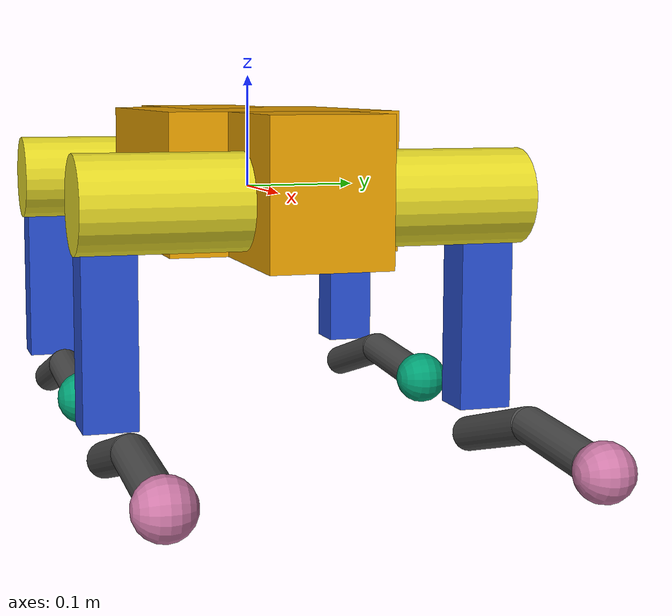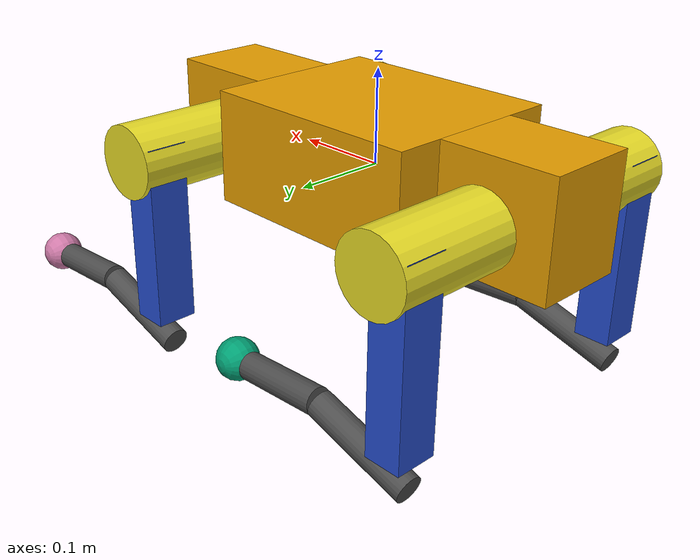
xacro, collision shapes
<?xml version="1.0"?>
<robot name="dog" xmlns:xacro="http://www.ros.org/wiki/xacro">

    <xacro:include filename="./const.xacro"/>
    <xacro:include filename="./ros2_control.xacro"/>
    <xacro:include filename="./leg.xacro"/>

    <link name="TORSO">
        <inertial>
            <origin xyz="${torso_com_x} ${torso_com_y} ${torso_com_z}"/>
            <mass value="${torso_mass}"/>
            <inertia ixx="${torso_ixx}" ixy="0" ixz="0" iyy="${torso_iyy}" iyz="0" izz="${torso_izz}"/>
        </inertial>
        <visual>
            <geometry>
                <mesh filename="${mesh_path}/torso.STL"/>
            </geometry>
        </visual>
        <collision>
            <origin xyz="0 0 0.01"/>
            <geometry>
                <box size="0.5 0.1 0.12"/>
            </geometry>
        </collision>
        <collision>
            <origin xyz="0 0 0.01"/>
            <geometry>
                <box size="0.25 0.2 0.12"/>
            </geometry>
        </collision>
    </link>

    <link name="imu_link">
        <inertial>
            <mass value="0.1"/>
            <origin xyz="0 0 0" rpy="0 0 0"/>
            <inertia ixx="0.001" ixy="0.0" ixz="0.0" iyy="0.001" iyz="0.0" izz="0.001"/>
        </inertial>
    </link>

    <joint name="imu_joint" type="fixed">
        <parent link="TORSO"/>
        <child link="imu_link"/>
        <origin xyz="0 0 0" rpy="0 0 0"/>
    </joint>
    <gazebo reference="imu_joint">
            <preserveFixedJoint>true</preserveFixedJoint>
    </gazebo>

    <link name="base_link"/>
    <joint name="base_joint" type="fixed">
        <parent link="base_link"/>
        <child link="TORSO"/>
        <origin xyz="0 0 0" rpy="0 0 0"/>
    </joint>

    <xacro:dog_leg name="LF" mirror="1" f_b="1"/>
    <xacro:dog_leg name="LH" mirror="1" f_b="-1"/>
    <xacro:dog_leg name="RF" mirror="-1" f_b="1"/>
    <xacro:dog_leg name="RH" mirror="-1" f_b="-1"/>

    <ros2_control name="dog_System" type="system">
        <hardware>
            <plugin>dog_hardware/DogGazeboHW</plugin>
            <param name="delay">${cfg['controller_manager']['ros__parameters']['hw_params']['delay']}</param>
            <param name="imu_accel_var">${cfg['controller_manager']['ros__parameters']['imu_params']['accel']['variance']}</param>
            <param name="imu_gyro_var">${cfg['controller_manager']['ros__parameters']['imu_params']['gyro']['variance']}</param>
            <param name="imu_ori_var">${cfg['controller_manager']['ros__parameters']['imu_params']['orientation']['variance']}</param>
        </hardware>

        <sensor name="imu_sensor">
            <state_interface name="orientation.x"/>
            <state_interface name="orientation.y"/>
            <state_interface name="orientation.z"/>
            <state_interface name="orientation.w"/>
            <state_interface name="angular_velocity.x"/>
            <state_interface name="angular_velocity.y"/>
            <state_interface name="angular_velocity.z"/>
            <state_interface name="linear_acceleration.x"/>
            <state_interface name="linear_acceleration.y"/>
            <state_interface name="linear_acceleration.z"/>

            <state_interface name="orientation_covariance"/>
            <state_interface name="angular_velocity_covariance"/>
            <state_interface name="linear_acceleration_covariance"/>
        </sensor>

        <sensor name="LF_contact_sensor"> <state_interface name="contact"/></sensor>
        <sensor name="RF_contact_sensor"> <state_interface name="contact"/></sensor>
        <sensor name="LH_contact_sensor"> <state_interface name="contact"/></sensor>
        <sensor name="RH_contact_sensor"> <state_interface name="contact"/></sensor>

        <xacro:leg_control_interface name="LF"/>
        <xacro:leg_control_interface name="RF"/>
        <xacro:leg_control_interface name="LH"/>
        <xacro:leg_control_interface name="RH"/>
    </ros2_control>

    <gazebo reference="imu_link">
      <sensor name="imu_sensor" type="imu">
        <always_on>true</always_on>
        <update_rate>1000</update_rate>
        <imu>
          <orientation>
            <x><noise type="gaussian"><stddev>${cfg['controller_manager']['ros__parameters']['imu_params']['orientation']['variance']**0.5}</stddev></noise></x>
            <y><noise type="gaussian"><stddev>${cfg['controller_manager']['ros__parameters']['imu_params']['orientation']['variance']**0.5}</stddev></noise></y>
            <z><noise type="gaussian"><stddev>${cfg['controller_manager']['ros__parameters']['imu_params']['orientation']['variance']**0.5}</stddev></noise></z>
          </orientation>
          <linear_acceleration>
            <x><noise type="gaussian"><stddev>${cfg['controller_manager']['ros__parameters']['imu_params']['accel']['variance']**0.5}</stddev><bias_mean>${cfg['controller_manager']['ros__parameters']['imu_params']['accel']['bias_mean']}</bias_mean></noise></x>
            <y><noise type="gaussian"><stddev>${cfg['controller_manager']['ros__parameters']['imu_params']['accel']['variance']**0.5}</stddev><bias_mean>${cfg['controller_manager']['ros__parameters']['imu_params']['accel']['bias_mean']}</bias_mean></noise></y>
            <z><noise type="gaussian"><stddev>${cfg['controller_manager']['ros__parameters']['imu_params']['accel']['variance']**0.5}</stddev><bias_mean>${cfg['controller_manager']['ros__parameters']['imu_params']['accel']['bias_mean']}</bias_mean></noise></z>
          </linear_acceleration>
          <angular_velocity>
            <x><noise type="gaussian"><stddev>${cfg['controller_manager']['ros__parameters']['imu_params']['gyro']['variance']**0.5}</stddev><bias_mean>${cfg['controller_manager']['ros__parameters']['imu_params']['gyro']['bias_mean']}</bias_mean></noise></x>
            <y><noise type="gaussian"><stddev>${cfg['controller_manager']['ros__parameters']['imu_params']['gyro']['variance']**0.5}</stddev><bias_mean>${cfg['controller_manager']['ros__parameters']['imu_params']['gyro']['bias_mean']}</bias_mean></noise></y>
            <z><noise type="gaussian"><stddev>${cfg['controller_manager']['ros__parameters']['imu_params']['gyro']['variance']**0.5}</stddev><bias_mean>${cfg['controller_manager']['ros__parameters']['imu_params']['gyro']['bias_mean']}</bias_mean></noise></z>
          </angular_velocity>
        </imu>
      </sensor>
    </gazebo>

    <gazebo>
        <plugin filename="libgazebo_ros2_control.so" name="gazebo_ros2_control">
            <parameters>$(find dog_bringup)/config/lite3/robot_controllers.yaml</parameters>
            <robot_param>robot_description</robot_param>
            <robot_param_node>robot_state_publisher</robot_param_node>
        </plugin>
    </gazebo>
    <gazebo>
      <plugin name="dog_ground_truth" filename="libgazebo_ros_p3d.so">
        <ros>
          <remapping>odom:=/ground_truth</remapping>
        </ros>
        <body_name>base_link</body_name>
        <frame_name>world</frame_name>
        <update_rate>10.0</update_rate>
        <xyz_offset>0 0 0</xyz_offset>
        <rpy_offset>0 0 0</rpy_offset>
        <gaussian_noise>0.001</gaussian_noise>
      </plugin>
    </gazebo>
</robot>

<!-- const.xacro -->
<robot xmlns:xacro="http://www.ros.org/wiki/xacro">
    <!-- xacro ./dog.xacro > dog.urdf -->
    <xacro:property name="mesh_path" value="package://dog_bringup/meshes/lite3"/>
    <xacro:property name="cfg" value="${xacro.load_yaml('$(find dog_bringup)/config/lite3/robot_controllers.yaml')}"/>

<!-- 躯干参数 -->
<xacro:property name="torso_mass" value="5.6056"/>        <!-- 躯干质量(kg) -->
<xacro:property name="torso_com_x" value="0"/>            <!-- 躯干质心x轴坐标(m) -->
<xacro:property name="torso_com_y" value="0"/>            <!-- 躯干质心y轴坐标(m) -->
<xacro:property name="torso_com_z" value="0"/>            <!-- 躯干质心z轴坐标(m) -->
<xacro:property name="torso_ixx" value="0.02456"/>        <!-- 躯干绕x轴转动惯量(kg·m²) -->
<xacro:property name="torso_iyy" value="0.05518"/>        <!-- 躯干绕y轴转动惯量(kg·m²) -->
<xacro:property name="torso_izz" value="0.07016"/>        <!-- 躯干绕z轴转动惯量(kg·m²) -->

<xacro:property name="damping" value="0.05"/>             <!-- 阻尼系数 -->
<xacro:property name="friction" value="0.01"/>            <!-- 摩擦系数 -->
<!-- 髋关节参数 -->
<xacro:property name="hip_mass" value="0.550"/>           <!-- 髋关节质量(kg) -->
<xacro:property name="hip_com_x" value="-0.00601"/>       <!-- 髋关节质心x轴坐标(m) -->
<xacro:property name="hip_com_y" value="-0.0066532"/>     <!-- 髋关节质心y轴坐标(m) -->
<xacro:property name="hip_com_z" value="0.00034295"/>     <!-- 髋关节质心z轴坐标(m) -->
<xacro:property name="hip_ixx" value="0.0003949"/>        <!-- 髋关节绕x轴转动惯量(kg·m²) -->
<xacro:property name="hip_iyy" value="0.0004028"/>        <!-- 髋关节绕y轴转动惯量(kg·m²) -->
<xacro:property name="hip_izz" value="0.0004472"/>        <!-- 髋关节绕z轴转动惯量(kg·m²) -->

<!-- 大腿参数 -->
<xacro:property name="thigh_mass" value="0.86"/>          <!-- 大腿质量(kg) -->
<xacro:property name="thigh_com_x" value="-0.0039245"/>   <!-- 大腿质心x轴坐标(m) -->
<xacro:property name="thigh_com_y" value="-0.014632"/>    <!-- 大腿质心y轴坐标(m) -->
<xacro:property name="thigh_com_z" value="-0.025146"/>    <!-- 大腿质心z轴坐标(m) -->
<xacro:property name="thigh_ixx" value="0.005736"/>       <!-- 大腿绕x轴转动惯量(kg·m²) -->
<xacro:property name="thigh_iyy" value="0.004960"/>       <!-- 大腿绕y轴转动惯量(kg·m²) -->
<xacro:property name="thigh_izz" value="0.001436"/>       <!-- 大腿绕z轴转动惯量(kg·m²) -->

<!-- 小腿参数 -->
<xacro:property name="shank_mass" value="0.153"/>         <!-- 小腿质量(kg) -->
<xacro:property name="shank_com_x" value="0.0064794"/>    <!-- 小腿质心x轴坐标(m) -->
<xacro:property name="shank_com_y" value="-0.00000145"/>  <!-- 小腿质心y轴坐标(m) -->
<xacro:property name="shank_com_z" value="-0.12157"/>     <!-- 小腿质心z轴坐标(m) -->
<xacro:property name="shank_ixx" value="0.00089039"/>     <!-- 小腿绕x轴转动惯量(kg·m²) -->
<xacro:property name="shank_iyy" value="0.00090672"/>     <!-- 小腿绕y轴转动惯量(kg·m²) -->
<xacro:property name="shank_izz" value="0.000031266"/>    <!-- 小腿绕z轴转动惯量(kg·m²) -->

<!-- 脚部参数 -->
<xacro:property name="foot_mass" value="0.06"/>           <!-- 脚部质量(kg) -->
<xacro:property name="foot_radius" value="0.023"/>        <!-- 脚部半径(m) -->
<xacro:property name="foot_ixx" value="0.0001"/>          <!-- 脚部绕x轴转动惯量(kg·m²) -->
<xacro:property name="foot_iyy" value="0.0001"/>          <!-- 脚部绕y轴转动惯量(kg·m²) -->
<xacro:property name="foot_izz" value="0.0001"/>          <!-- 脚部绕z轴转动惯量(kg·m²) -->

<!-- 关节位置偏移参数 -->
<xacro:property name="hip_offset_x" value="0.1745"/>      <!-- 髋关节x轴方向偏移量(m) -->
<xacro:property name="hip_offset_y" value="0.062"/>       <!-- 髋关节y轴方向偏移量(m) -->
<xacro:property name="thigh_offset_y" value="0.09735"/>   <!-- 大腿y轴方向偏移量(m) -->
<xacro:property name="shank_offset_z" value="-0.20"/>     <!-- 小腿z轴方向偏移量(m) -->
<xacro:property name="foot_offset_z" value="-0.21012"/>   <!-- 脚部z轴方向偏移量(m) -->

<!-- 髋关节x轴关节限位&性能参数 -->
<xacro:property name="hipx_min" value="-0.523"/>          <!-- 髋x轴关节最小角度(rad，约-30°) -->
<xacro:property name="hipx_max" value="0.523"/>           <!-- 髋x轴关节最大角度(rad，约30°) -->
<xacro:property name="hipx_vel" value="26.2"/>            <!-- 髋x轴关节最大角速度(rad/s) -->
<xacro:property name="hipx_eff" value="24"/>              <!-- 髋x轴关节最大力矩(N·m) -->

<!-- 髋关节y轴关节限位&性能参数 -->
<xacro:property name="hipy_min" value="-2.67"/>           <!-- 髋y轴关节最小角度(rad) -->
<xacro:property name="hipy_max" value="0.314"/>           <!-- 髋y轴关节最大角度(rad，约18°) -->
<xacro:property name="hipy_vel" value="26.2"/>            <!-- 髋y轴关节最大角速度(rad/s) -->
<xacro:property name="hipy_eff" value="24"/>              <!-- 髋y轴关节最大力矩(N·m) -->

<!-- 膝关节限位&性能参数 -->
<xacro:property name="knee_min" value="0.524"/>           <!-- 膝关节最小角度(rad，约30°) -->
<xacro:property name="knee_max" value="2.792"/>           <!-- 膝关节最大角度(rad，约160°) -->
<xacro:property name="knee_vel" value="17.3"/>            <!-- 膝关节最大角速度(rad/s) -->
<xacro:property name="knee_eff" value="36"/>              <!-- 膝关节最大力矩(N·m) -->

</robot>

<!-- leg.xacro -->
<robot xmlns:xacro="http://www.ros.org/wiki/xacro">

    <xacro:macro name="dog_leg" params="name mirror f_b">

        <link name="${name}_HIP">
            <inertial>
                <origin xyz="${hip_com_x} ${mirror * hip_com_y} ${hip_com_z}"/>
                <mass value="${hip_mass}"/>
                <inertia ixx="${hip_ixx}" ixy="0" ixz="0" iyy="${hip_iyy}" iyz="0" izz="${hip_izz}"/>
            </inertial>
            <visual>
                <geometry>
                    <mesh filename="${mesh_path}/hip.STL" scale="${f_b} ${mirror} 1"/>
                </geometry>
            </visual>
            <collision>
                <origin xyz="0 ${mirror * 0.05} 0" rpy="1.57079632 0 0"/>
                <geometry>
                    <cylinder length="0.15" radius="0.04"/>
                </geometry>
            </collision>
        </link>

        <joint name="${name}_HAA" type="revolute">
            <origin xyz="${f_b * hip_offset_x} ${mirror * hip_offset_y} 0"/>
            <parent link="TORSO"/>
            <child link="${name}_HIP"/>
            <axis xyz="-1 0 0"/>
            <limit lower="${hipx_min}" upper="${hipx_max}" effort="${hipx_eff}" velocity="${hipx_vel}"/>
            <dynamics damping="${damping}" friction="${friction}"/>
        </joint>

        <link name="${name}_THIGH">
            <inertial>
                <origin xyz="${thigh_com_x} ${mirror * thigh_com_y} ${thigh_com_z}"/>
                <mass value="${thigh_mass}"/>
                <inertia ixx="${thigh_ixx}" ixy="0" ixz="0" iyy="${thigh_iyy}" iyz="0" izz="${thigh_izz}"/>
            </inertial>
            <visual>
                <geometry>
                    <mesh filename="${mesh_path}/thigh.STL" scale="1 ${mirror} 1"/>
                </geometry>
            </visual>
            <collision>
                <origin xyz="-0.015 0 -0.08" />
                <geometry>
                    <box size="0.04 0.045 0.2"/>
                </geometry>
            </collision>
        </link>

        <joint name="${name}_HFE" type="revolute">
            <origin xyz="0 ${mirror * thigh_offset_y} 0"/>
            <parent link="${name}_HIP"/>
            <child link="${name}_THIGH"/>
            <axis xyz="0 -1 0"/>
            <limit lower="${hipy_min}" upper="${hipy_max}" effort="${hipy_eff}" velocity="${hipy_vel}"/>
            <dynamics damping="${damping}" friction="${friction}"/>
        </joint>

        <link name="${name}_SHANK">
            <inertial>
                <origin xyz="${shank_com_x} ${shank_com_y} ${shank_com_z}"/>
                <mass value="${shank_mass}"/>
                <inertia ixx="${shank_ixx}" ixy="0" ixz="0" iyy="${shank_iyy}" iyz="0" izz="${shank_izz}"/>
            </inertial>
            <visual>
                <geometry>
                    <mesh filename="${mesh_path}/shank.STL"/>
                </geometry>
            </visual>
            <collision>
                <origin xyz="0.005 0 -0.03" rpy="0 -0.2 0"/>
                <geometry>
                    <cylinder length="0.12" radius="0.015"/>
                </geometry>
            </collision>
            <collision>
                <origin xyz="0.01 0 -0.14" rpy="0 0.15 0"/>
                <geometry>
                    <cylinder length="0.10" radius="0.015"/>
                </geometry>
            </collision>
        </link>

        <joint name="${name}_KFE" type="revolute">
            <origin xyz="0 0 ${shank_offset_z}"/>
            <parent link="${name}_THIGH"/>
            <child link="${name}_SHANK"/>
            <axis xyz="0 -1 0"/>
            <limit lower="${knee_min}" upper="${knee_max}" effort="${knee_eff}" velocity="${knee_vel}"/>
            <dynamics damping="${damping}" friction="${friction}"/>
        </joint>

        <link name="${name}_FOOT">
            <collision name="${name}_FOOT_collision">
                <origin rpy="1.57079632679 0 0" />
                <geometry>
                    <sphere radius="${foot_radius}"/>
                </geometry>
            </collision>
            <inertial>
                <mass value="${foot_mass}"/>
                <inertia ixx="${foot_ixx}" ixy="0" ixz="0" iyy="${foot_iyy}" iyz="0" izz="${foot_izz}"/>
            </inertial>
        </link>

        <joint name="${name}_Ankle" type="fixed" dont_collapse="true">
            <parent link="${name}_SHANK"/>
            <child link="${name}_FOOT"/>
            <origin xyz="0 0 ${foot_offset_z}"/>
        </joint>

        <gazebo reference="${name}_Ankle">
            <preserveFixedJoint>true</preserveFixedJoint>
        </gazebo>

        <gazebo reference="${name}_HIP">
            <mu1>0.2</mu1>
            <mu2>0.2</mu2>
            <material>Gazebo/Yellow</material>
            <self_collide>1</self_collide>
        </gazebo>

        <gazebo reference="${name}_THIGH">
            <mu1>0.2</mu1>
            <mu2>0.2</mu2>
            <material>Gazebo/Blue</material>
            <self_collide>0</self_collide>
            <kp value="1000000.0"/>
            <kd value="100.0"/>
        </gazebo>

        <gazebo reference="${name}_SHANK">
            <mu1>0.6</mu1>
            <mu2>0.6</mu2>
            <material>Gazebo/DarkGrey</material>
            <self_collide>1</self_collide>
        </gazebo>

        <gazebo reference="${name}_FOOT">
            <mu1>0.6</mu1>
            <mu2>0.6</mu2>
            <kp>1000000.0</kp>
            <kd>100.0</kd>
            <minDepth>0.001</minDepth>
            <self_collide>1</self_collide>
            <sensor name="${name}_contact_sensor" type="contact">
              <always_on>true</always_on>
              <update_rate>1000</update_rate>
              <contact>
                <collision>${name}_FOOT_collision</collision>
              </contact>
            </sensor>
        </gazebo>

    </xacro:macro>
</robot>
